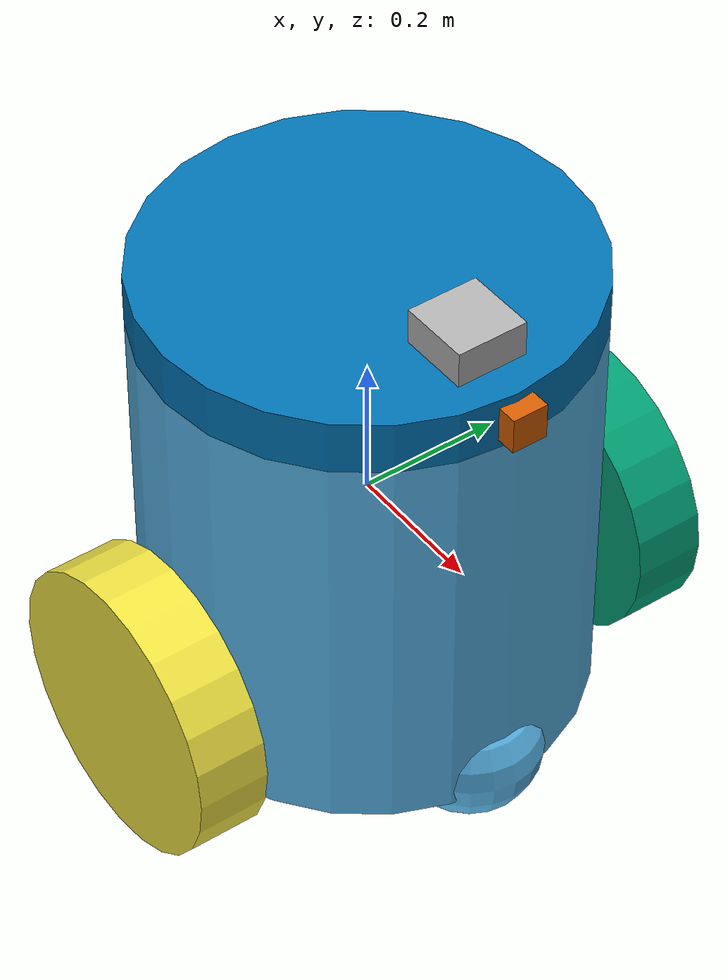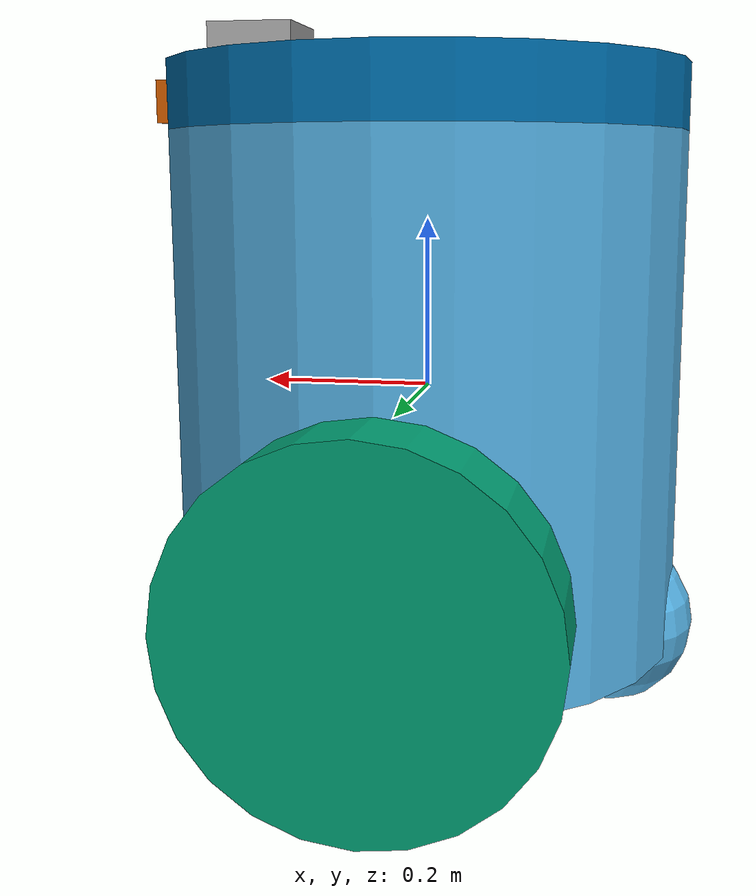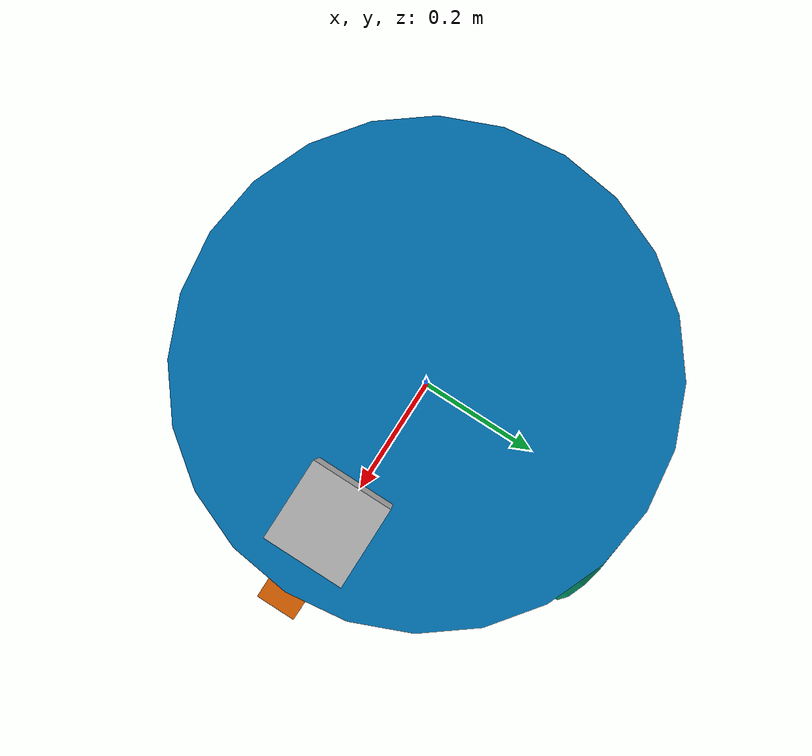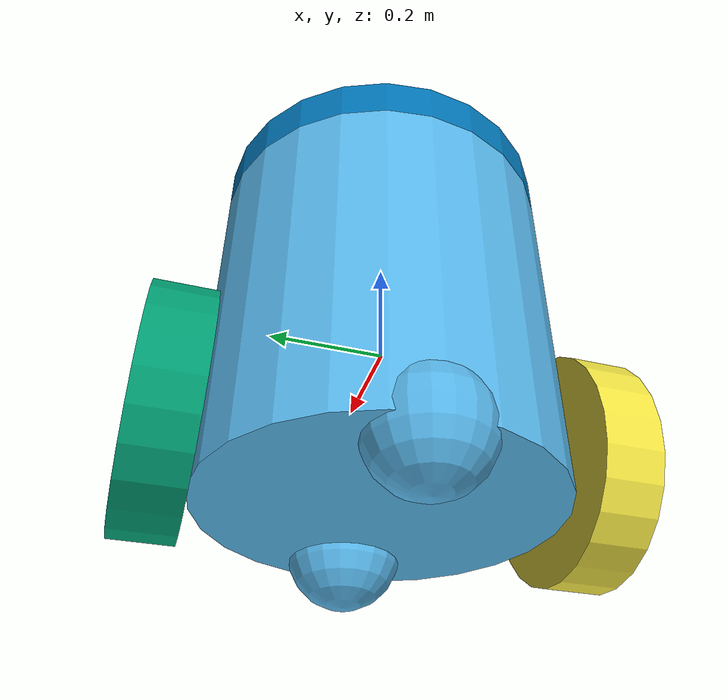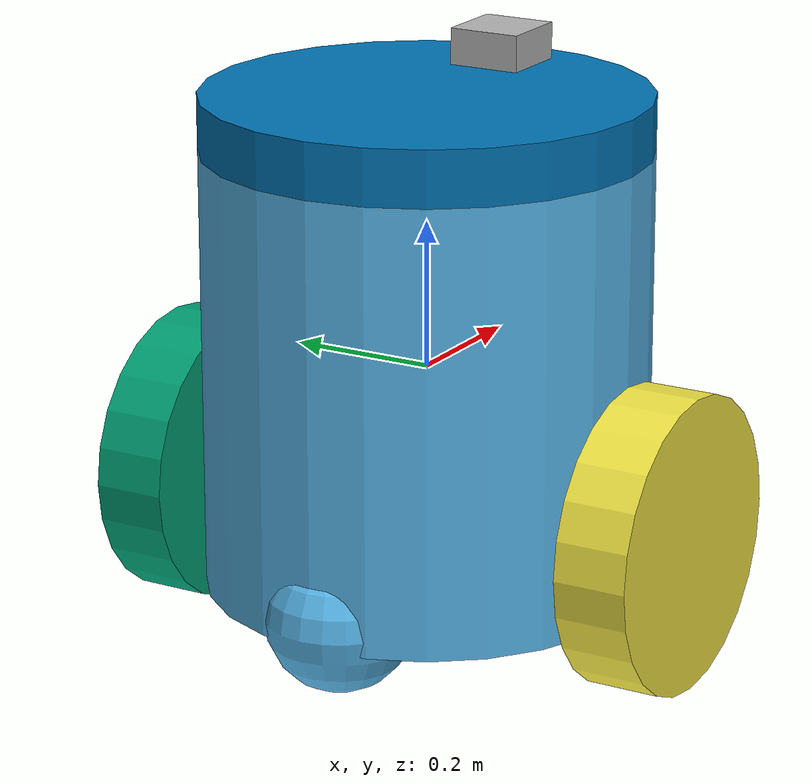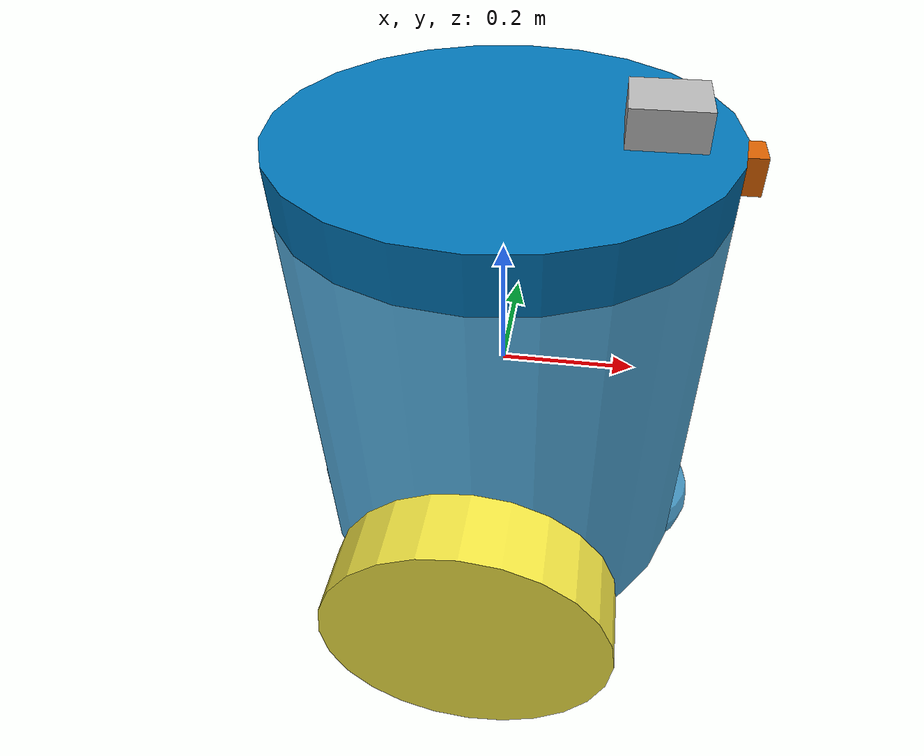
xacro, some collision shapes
<?xml version="1.0"?>

<robot name="my_robot" xmlns:xacro="http://www.ros.org/wiki/xacro">

    <!-- CONSTANTS -->

    <xacro:property name="pi" value="3.1415926535897931" />

    <!-- PARAMETERS -->

    <!-- Wheel parameters -->
    <xacro:property name="wheel_radius" value="0.2" />
    <xacro:property name="wheel_length" value="0.1" />
    <xacro:property name="wheel_mass" value="5.0" />

    <xacro:property name="z_offset_between_centers" value="${wheel_radius - base_height/30}" />

    <!-- Base parameters -->
    <xacro:property name="base_radius" value="0.3" />
    <xacro:property name="base_height" value="0.6" />
    <xacro:property name="base_mass" value="15.0" />

      <!-- Camera parameters -->
    <xacro:property name="camera_edge_length" value="0.05" />
    <xacro:property name="camera_mass" value="0.1" />

    <!-- Lidar parameters -->
    <xacro:property name="lidar_edge_length" value="0.1" />
    <xacro:property name="lidar_mass" value="1e-5" />

    <!-- Sensor's base parameters -->
    <xacro:property name="sensors_base_heigth" value="${1.5*camera_edge_length}" />
    <xacro:property name="sensors_base_mass" value="5.0" />
    <xacro:property name="sensors_base_offset_z" value="${base_height/2 + sensors_base_heigth/2}" />

    <xacro:property name="reduction_factor_caster_radius" value="0.998" />
    <!-- INCLUDES -->

    <xacro:include filename="$(find my_robot)/urdf/materials.xacro" />
    <xacro:include filename="$(find my_robot)/urdf/macros.xacro" />
    <xacro:include filename="$(find my_robot)/urdf/my_robot.gazebo" />

    <!-- ROBOT DESCRIPTION-->

    <link name="robot_footprint"></link>

    <joint name="robot_footprint_joint" type="fixed">
        <origin xyz="0 0 0" rpy="0 0 0"/>
        <parent link="robot_footprint"/>
        <child link="base"/>
    </joint>

    <!-- Cylindrical base with two casters for stability along the y axis-->
    <link name="base">
        <pose>0 0 ${wheel_radius + z_offset_between_centers} 0 0 0</pose>

        <xacro:cylinder_inertial
            mass="${base_mass}" radius="${base_radius}" length="${base_height}"
        />

        <collision name="base_collision">
            <origin xyz="0 0 0" rpy="0 0 0"/>
            <geometry>
                <cylinder radius="${base_radius}" length="${base_height}" />
            </geometry>
        </collision>

        <visual name="base_visual">
            <origin xyz="0 0 0" rpy="0 0 0"/>
            <geometry>
                <cylinder radius="${base_radius}" length="${base_height}" />
            </geometry>
        </visual>

        <collision name="back_caster_collision">
            <origin
                xyz="${-3/4*base_radius} 0 ${-wheel_radius/2 - z_offset_between_centers}"
                rpy="0 0 0"
            />
            <geometry>
                <sphere radius="${reduction_factor_caster_radius*wheel_radius/2}"/>
            </geometry>
        </collision>

        <visual name="back_caster_visual">
            <origin
                xyz="${-3/4*base_radius} 0 ${-wheel_radius/2 - z_offset_between_centers}"
                rpy="0 0 0"
            />
            <geometry>
                <sphere radius="${wheel_radius/2}"/>
            </geometry>
        </visual>

        <collision name="front_caster_collision">
            <origin
                xyz="${3/4*base_radius} 0 ${-wheel_radius/2 - z_offset_between_centers}"
                rpy="0 0 0"
            />
            <geometry>
                <sphere radius="${reduction_factor_caster_radius*wheel_radius/2}"/>
            </geometry>
        </collision>

        <visual name="front_caster_visual">
            <origin
                xyz="${3/4*base_radius} 0 ${-wheel_radius/2 - z_offset_between_centers}"
                rpy="0 0 0"
            />
            <geometry>
                <sphere radius="${wheel_radius/2}"/>
            </geometry>
        </visual>

    </link>

    <!-- Wheels on the x axis with their corresponding joints -->
    <xacro:wheel side="right" reflect="1" />
    <xacro:wheel side="left" reflect="-1" />

    <!-- Rotating base for the sensors -->
    <link name="sensors_base">
        <xacro:cylinder_inertial
            mass="${sensors_base_mass}" radius="${base_radius}" length="${sensors_base_heigth}"
        />

        <collision name="sensors_base_collision">
            <origin xyz="0 0 0" rpy="0 0 0"/>
            <geometry>
                <cylinder radius="${base_radius}" length="${sensors_base_heigth}" />
            </geometry>
        </collision>

        <visual name="sensors_base_visual">
            <origin xyz="0 0 0" rpy="0 0 0"/>
            <geometry>
                <cylinder radius="${base_radius}" length="${sensors_base_heigth}" />
            </geometry>
        </visual>
    </link>

    <joint name="sensors_base_hinge" type="fixed">
        <origin xyz="0 0 ${sensors_base_offset_z}" rpy="0 0 0" />
        <child link="sensors_base" />
        <parent link="base" />
        <axis xyz="0 0 1" rpy="0 0 0" />
        <limit effort="10000" velocity="1000" />
        <dynamics damping="1.0" friction="1.0" />
    </joint>

    <!-- Camera -->
    <link name="camera">
        <xacro:cube_inertial mass="${camera_mass}" edge_length="${camera_edge_length}" />

        <collision name="camera_collision">
            <origin xyz="0 0 0" rpy="0 0 0" />
            <geometry>
                <box size="${camera_edge_length} ${camera_edge_length} ${camera_edge_length}" />
            </geometry>
        </collision>

        <visual name="camera_visual">
            <origin xyz="0 0 0" rpy="0 0 0" />
            <geometry>
                <box size="${camera_edge_length} ${camera_edge_length} ${camera_edge_length}" />
            </geometry>
        </visual>
    </link>

    <joint name="camera_joint" type="fixed">
        <origin xyz="${base_radius} 0 0" rpy="0 0 0" />
        <parent link="sensors_base" />
        <child link="camera" />
        <axis xyz="0 1 0" rpy="0 0 0" />

      </joint>
       <link name="camera_rgbd_frame"></link>
       <joint name="camera_rgbd_joint" type="fixed">
        <origin xyz="0 0 0" rpy="-${pi/2} 0 -${pi/2}"/>
        <parent link="camera"/>
        <child link="camera_rgbd_frame"/>
      </joint>

      <link name="hokuyo">
        <xacro:cube_inertial mass="${lidar_mass}" edge_length="${lidar_edge_length}" />

        <collision name="lidar_collision">
            <origin xyz="0 0 0" rpy="0 0 0" />
            <geometry>
                <box size="${lidar_edge_length} ${lidar_edge_length} ${lidar_edge_length}" />
            </geometry>
        </collision>

        <visual name="lidar_visual">
            <origin xyz="0 0 0" rpy="0 0 0" />
            <geometry>
                <mesh filename="package://my_robot/meshes/hokuyo.dae" />
            </geometry>
        </visual>
    </link>

    <joint name="hokuyo_joint" type="fixed">
        <origin
            xyz="${base_radius - lidar_edge_length} 0 ${sensors_base_heigth/2}"
            rpy="0 0 0"
        />
        <parent link="sensors_base" />
        <child link="hokuyo" />
        <axis xyz="0 1 0" rpy="0 0 0" />
    </joint>

</robot>

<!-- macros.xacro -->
<robot xmlns:xacro="http://www.ros.org/wiki/xacro">

    <!-- Inertial of a cylinder -->
    <xacro:macro name="cylinder_inertial" params="mass radius length">
        <inertial>
            <mass value="${mass}" />
            <inertia
                ixx="${1/12*mass*(3*radius*radius + length*length)}" ixy="0" ixz="0"
                iyy="${1/12*mass*(3*radius*radius + length*length)}" iyz="0"
                izz="${1/2*mass*radius*radius}"
            />
        </inertial>
    </xacro:macro>

    <!-- Inertial of a cube -->
    <xacro:macro name="cube_inertial" params="mass edge_length">
        <inertial>
            <mass value="${mass}" />
            <inertia
                ixx="${1/6*mass*edge_length*edge_length}" ixy="0" ixz="0"
                iyy="${1/6*mass*edge_length*edge_length}" iyz="0"
                izz="${1/6*mass*edge_length*edge_length}"
            />
        </inertial>
    </xacro:macro>

    <!-- Add a wheel and its joint on the x axis, outer part of the base -->
    <xacro:macro name="wheel" params="side reflect">
        <link name="${side}_wheel">
            <xacro:cylinder_inertial
                mass="${wheel_mass}" radius="${wheel_radius}" length="${wheel_length}"
            />

            <collision name="${side}_wheel_collision">
                <origin xyz="0 0 0" rpy="0 ${pi/2} ${pi/2}"/>
                <geometry>
                    <cylinder radius="${wheel_radius}" length="${wheel_length}"/>
                </geometry>
            </collision>

            <visual name="${side}_wheel_visual">
                <origin xyz="0 0 0" rpy="0 ${pi/2} ${pi/2}"/>
                <geometry>
                    <cylinder radius="${wheel_radius}" length="${wheel_length}"/>
                </geometry>
            </visual>
        </link>

        <joint type="continuous" name="${side}_wheel_hinge">
            <origin
                xyz="0 ${reflect*(base_radius + wheel_length/2)} ${-z_offset_between_centers}"
                rpy="0 0 0"
            />
            <child link="${side}_wheel"/>
            <parent link="base"/>
            <axis xyz="0 1 0" rpy="0 0 0"/>
            <limit effort="10000" velocity="1000"/>
            <dynamics damping="1.0" friction="1.0"/>
        </joint>
    </xacro:macro>
</robot>
